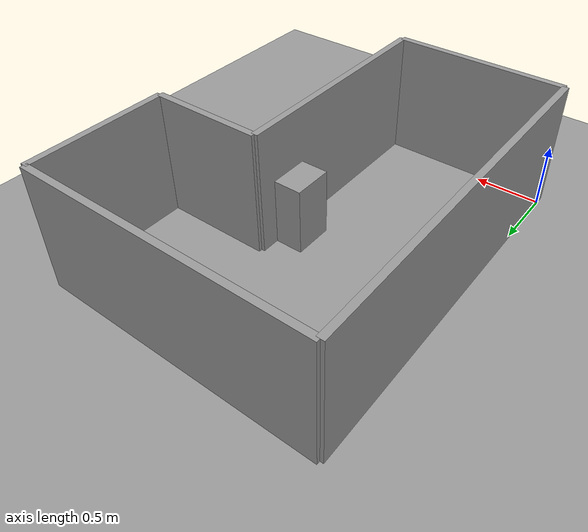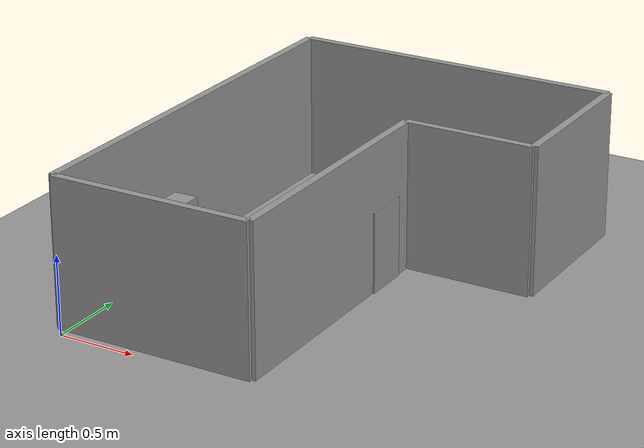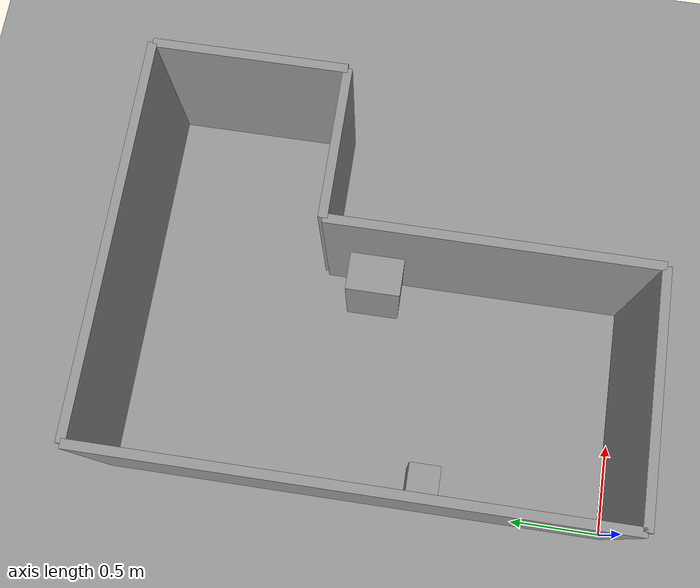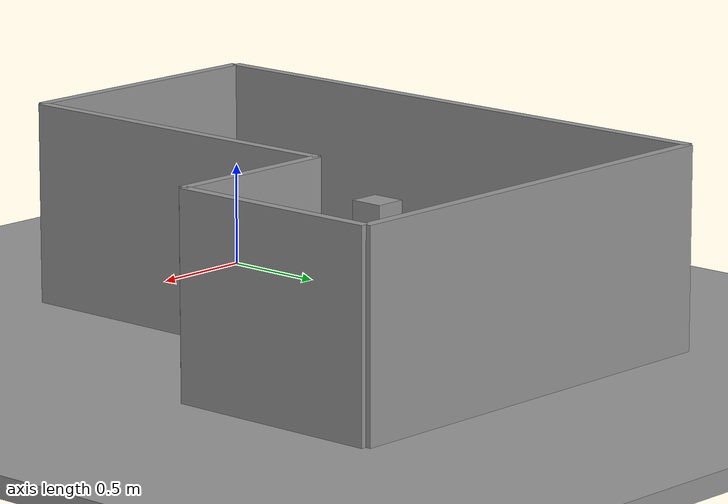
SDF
<sdf version='1.5'>
  <world name='room1'>
    <light name='sun' type='directional'>
      <cast_shadows>1</cast_shadows>
      <pose frame=''>0 0 10 0 -0 0</pose>
      <diffuse>0.8 0.8 0.8 1</diffuse>
      <specular>0.2 0.2 0.2 1</specular>
      <attenuation>
        <range>1000</range>
        <constant>0.9</constant>
        <linear>0.01</linear>
        <quadratic>0.001</quadratic>
      </attenuation>
      <direction>-0.5 0.1 -0.9</direction>
    </light>
    <physics name='default_physics' default='0' type='ode'>
      <max_step_size>0.001</max_step_size>
      <real_time_factor>1</real_time_factor>
      <real_time_update_rate>1000</real_time_update_rate>
      <gravity>0 0 -9.8</gravity>
      <magnetic_field>5.5645e-06 2.28758e-05 -4.23884e-05</magnetic_field>
    </physics>
    <scene>
      <ambient>0.4 0.4 0.4 1</ambient>
      <background>0.7 0.7 0.7 1</background>
      <shadows>1</shadows>
    </scene>
    <model name='wall1'>
      <pose frame=''>0 1.395 0.5 0 0 3.14159 </pose>
      <static>1</static>
      <link name='link'>
        <inertial>
          <mass>1</mass>
          <inertia>
            <ixx>1</ixx>
            <ixy>0</ixy>
            <ixz>0</ixz>
            <iyy>1</iyy>
            <iyz>0</iyz>
            <izz>1</izz>
          </inertia>
        </inertial>
        <collision name='collision'>
          <geometry>
            <box>
              <size>0.05 2.79 1</size>
            </box>
          </geometry>
          <max_contacts>10</max_contacts>
          <surface>
            <contact>
              <ode/>
            </contact>
            <bounce/>
            <friction>
              <ode/>
            </friction>
          </surface>
        </collision>
        <visual name='visual'>
          <geometry>
            <box>
              <size>0.05 2.79 1</size>
            </box>
          </geometry>
          <material>
            <script>
              <uri>file://media/materials/scripts/gazebo.material</uri>
              <name>Gazebo/Grey</name>
            </script>
          </material>
        </visual>
        <self_collide>0</self_collide>
        <kinematic>0</kinematic>
        <gravity>0</gravity>
      </link>
    </model>
    <model name='wall2'>
      <pose frame=''>1.07 2.79 0.5 0 0 1.5708 </pose>
      <static>1</static>
      <link name='link'>
        <inertial>
          <mass>1</mass>
          <inertia>
            <ixx>1</ixx>
            <ixy>0</ixy>
            <ixz>0</ixz>
            <iyy>1</iyy>
            <iyz>0</iyz>
            <izz>1</izz>
          </inertia>
        </inertial>
        <collision name='collision'>
          <geometry>
            <box>
              <size>0.05 2.14 1</size>
            </box>
          </geometry>
          <max_contacts>10</max_contacts>
          <surface>
            <contact>
              <ode/>
            </contact>
            <bounce/>
            <friction>
              <ode/>
            </friction>
          </surface>
        </collision>
        <visual name='visual'>
          <geometry>
            <box>
              <size>0.05 2.14 1</size>
            </box>
          </geometry>
          <material>
            <script>
              <uri>file://media/materials/scripts/gazebo.material</uri>
              <name>Gazebo/Grey</name>
            </script>
          </material>
        </visual>
        <self_collide>0</self_collide>
        <kinematic>0</kinematic>
        <gravity>0</gravity>
      </link>
    </model>
    <model name='wall3'>
      <pose frame=''>2.14 2.265 0.5 0 0 0 </pose>
      <static>1</static>
      <link name='link'>
        <inertial>
          <mass>1</mass>
          <inertia>
            <ixx>1</ixx>
            <ixy>0</ixy>
            <ixz>0</ixz>
            <iyy>1</iyy>
            <iyz>0</iyz>
            <izz>1</izz>
          </inertia>
        </inertial>
        <collision name='collision'>
          <geometry>
            <box>
              <size>0.05 1.05 1</size>
            </box>
          </geometry>
          <max_contacts>10</max_contacts>
          <surface>
            <contact>
              <ode/>
            </contact>
            <bounce/>
            <friction>
              <ode/>
            </friction>
          </surface>
        </collision>
        <visual name='visual'>
          <geometry>
            <box>
              <size>0.05 1.05 1</size>
            </box>
          </geometry>
          <material>
            <script>
              <uri>file://media/materials/scripts/gazebo.material</uri>
              <name>Gazebo/Grey</name>
            </script>
          </material>
        </visual>
        <self_collide>0</self_collide>
        <kinematic>0</kinematic>
        <gravity>0</gravity>
      </link>
    </model>
    <model name='wall4'>
      <pose frame=''>1.72 1.74 0.5 0 0 -1.5708 </pose>
      <static>1</static>
      <link name='link'>
        <inertial>
          <mass>1</mass>
          <inertia>
            <ixx>1</ixx>
            <ixy>0</ixy>
            <ixz>0</ixz>
            <iyy>1</iyy>
            <iyz>0</iyz>
            <izz>1</izz>
          </inertia>
        </inertial>
        <collision name='collision'>
          <geometry>
            <box>
              <size>0.05 0.84 1</size>
            </box>
          </geometry>
          <max_contacts>10</max_contacts>
          <surface>
            <contact>
              <ode/>
            </contact>
            <bounce/>
            <friction>
              <ode/>
            </friction>
          </surface>
        </collision>
        <visual name='visual'>
          <geometry>
            <box>
              <size>0.05 0.84 1</size>
            </box>
          </geometry>
          <material>
            <script>
              <uri>file://media/materials/scripts/gazebo.material</uri>
              <name>Gazebo/Grey</name>
            </script>
          </material>
        </visual>
        <self_collide>0</self_collide>
        <kinematic>0</kinematic>
        <gravity>0</gravity>
      </link>
    </model>
    <model name='wall5'>
      <pose frame=''>1.3 0.87 0.5 0 0 0 </pose>
      <static>1</static>
      <link name='link'>
        <inertial>
          <mass>1</mass>
          <inertia>
            <ixx>1</ixx>
            <ixy>0</ixy>
            <ixz>0</ixz>
            <iyy>1</iyy>
            <iyz>0</iyz>
            <izz>1</izz>
          </inertia>
        </inertial>
        <collision name='collision'>
          <geometry>
            <box>
              <size>0.05 1.74 1</size>
            </box>
          </geometry>
          <max_contacts>10</max_contacts>
          <surface>
            <contact>
              <ode/>
            </contact>
            <bounce/>
            <friction>
              <ode/>
            </friction>
          </surface>
        </collision>
        <visual name='visual'>
          <geometry>
            <box>
              <size>0.05 1.74 1</size>
            </box>
          </geometry>
          <material>
            <script>
              <uri>file://media/materials/scripts/gazebo.material</uri>
              <name>Gazebo/Grey</name>
            </script>
          </material>
        </visual>
        <self_collide>0</self_collide>
        <kinematic>0</kinematic>
        <gravity>0</gravity>
      </link>
    </model>
    <model name='wall6'>
      <pose frame=''>0.65 0 0.5 0 0 -1.5708 </pose>
      <static>1</static>
      <link name='link'>
        <inertial>
          <mass>1</mass>
          <inertia>
            <ixx>1</ixx>
            <ixy>0</ixy>
            <ixz>0</ixz>
            <iyy>1</iyy>
            <iyz>0</iyz>
            <izz>1</izz>
          </inertia>
        </inertial>
        <collision name='collision'>
          <geometry>
            <box>
              <size>0.05 1.3 1</size>
            </box>
          </geometry>
          <max_contacts>10</max_contacts>
          <surface>
            <contact>
              <ode/>
            </contact>
            <bounce/>
            <friction>
              <ode/>
            </friction>
          </surface>
        </collision>
        <visual name='visual'>
          <geometry>
            <box>
              <size>0.05 1.3 1</size>
            </box>
          </geometry>
          <material>
            <script>
              <uri>file://media/materials/scripts/gazebo.material</uri>
              <name>Gazebo/Grey</name>
            </script>
          </material>
        </visual>
        <self_collide>0</self_collide>
        <kinematic>0</kinematic>
        <gravity>0</gravity>
      </link>
    </model>
    <model name='box1'>
      <pose frame=''>0.125 1.04 0.25 0 0 0 </pose>
      <static>1</static>
      <link name='link'>
        <inertial>
          <mass>1</mass>
          <inertia>
            <ixx>1</ixx>
            <ixy>0</ixy>
            <ixz>0</ixz>
            <iyy>1</iyy>
            <iyz>0</iyz>
            <izz>1</izz>
          </inertia>
        </inertial>
        <collision name='collision'>
          <geometry>
            <box>
              <size>0.16 0.17 0.5</size>
            </box>
          </geometry>
          <max_contacts>10</max_contacts>
          <surface>
            <contact>
              <ode/>
            </contact>
            <bounce/>
            <friction>
              <ode/>
            </friction>
          </surface>
        </collision>
        <visual name='visual'>
          <geometry>
            <box>
              <size>0.16 0.17 0.5</size>
            </box>
          </geometry>
          <material>
            <script>
              <uri>file://media/materials/scripts/gazebo.material</uri>
              <name>Gazebo/Grey</name>
            </script>
          </material>
        </visual>
        <self_collide>0</self_collide>
        <kinematic>0</kinematic>
        <gravity>0</gravity>
      </link>
    </model>
    <model name='floor'>
      <pose frame=''>0 0 0 0 0 0 </pose>
      <static>1</static>
      <link name='link'>
        <inertial>
          <mass>1</mass>
          <inertia>
            <ixx>1</ixx>
            <ixy>0</ixy>
            <ixz>0</ixz>
            <iyy>1</iyy>
            <iyz>0</iyz>
            <izz>1</izz>
          </inertia>
        </inertial>
        <collision name='collision'>
          <geometry>
            <box>
              <size>20 20 0.1</size>
            </box>
          </geometry>
          <max_contacts>10</max_contacts>
          <surface>
            <contact>
              <ode/>
            </contact>
            <bounce/>
            <friction>
              <ode/>
            </friction>
          </surface>
        </collision>
        <visual name='visual'>
          <geometry>
            <box>
              <size>20 20 0.1</size>
            </box>
          </geometry>
          <material>
            <script>
              <uri>file://media/materials/scripts/gazebo.material</uri>
              <name>Gazebo/Grey</name>
            </script>
          </material>
        </visual>
        <self_collide>0</self_collide>
        <kinematic>0</kinematic>
        <gravity>0</gravity>
      </link>
    </model>
    <model name='box2'>
      <pose frame=''>1.2 1.45 0.285 0 0 0 </pose>
      <static>1</static>
      <link name='link'>
        <inertial>
          <mass>1</mass>
          <inertia>
            <ixx>1</ixx>
            <ixy>0</ixy>
            <ixz>0</ixz>
            <iyy>1</iyy>
            <iyz>0</iyz>
            <izz>1</izz>
          </inertia>
        </inertial>
        <collision name='collision'>
          <geometry>
            <box>
              <size>0.27 0.3 0.57</size>
            </box>
          </geometry>
          <max_contacts>10</max_contacts>
          <surface>
            <contact>
              <ode/>
            </contact>
            <bounce/>
            <friction>
              <ode/>
            </friction>
          </surface>
        </collision>
        <visual name='visual'>
          <geometry>
            <box>
              <size>0.27 0.3 0.57</size>
            </box>
          </geometry>
          <material>
            <script>
              <uri>file://media/materials/scripts/gazebo.material</uri>
              <name>Gazebo/Grey</name>
            </script>
          </material>
        </visual>
        <self_collide>0</self_collide>
        <kinematic>0</kinematic>
        <gravity>0</gravity>
      </link>
    </model>
  </world>
</sdf>
